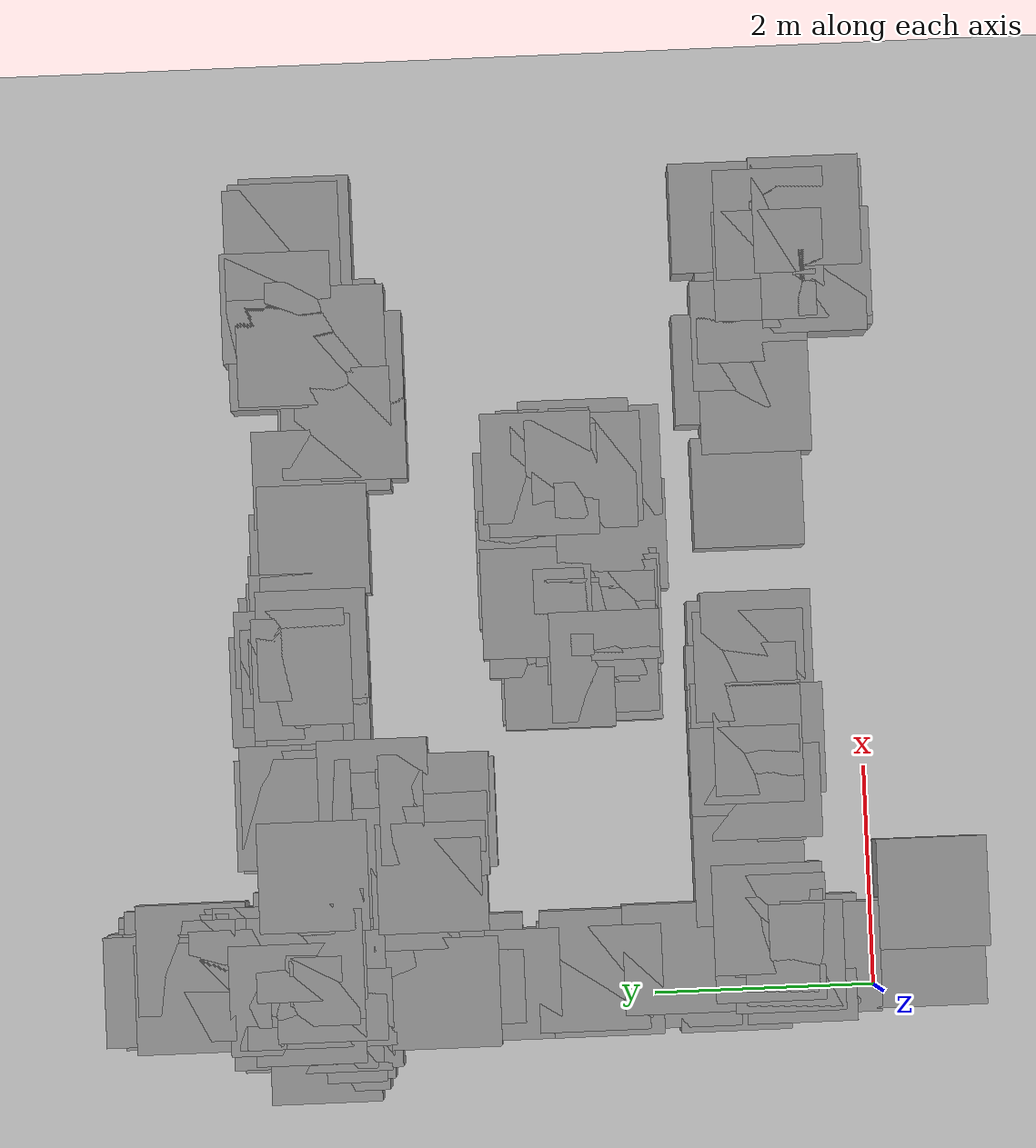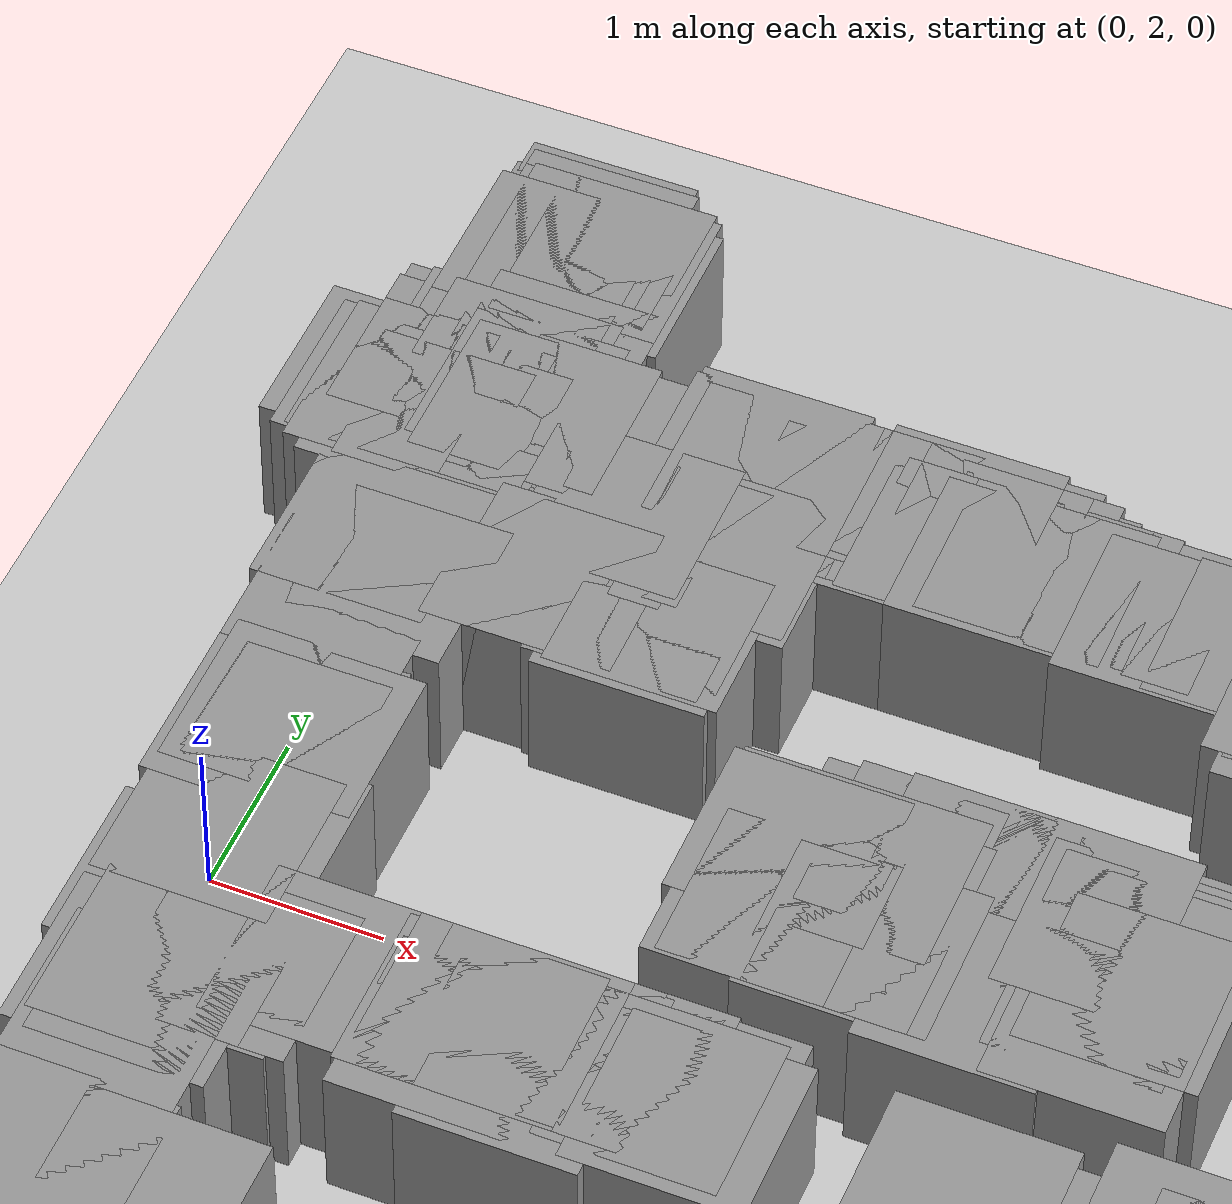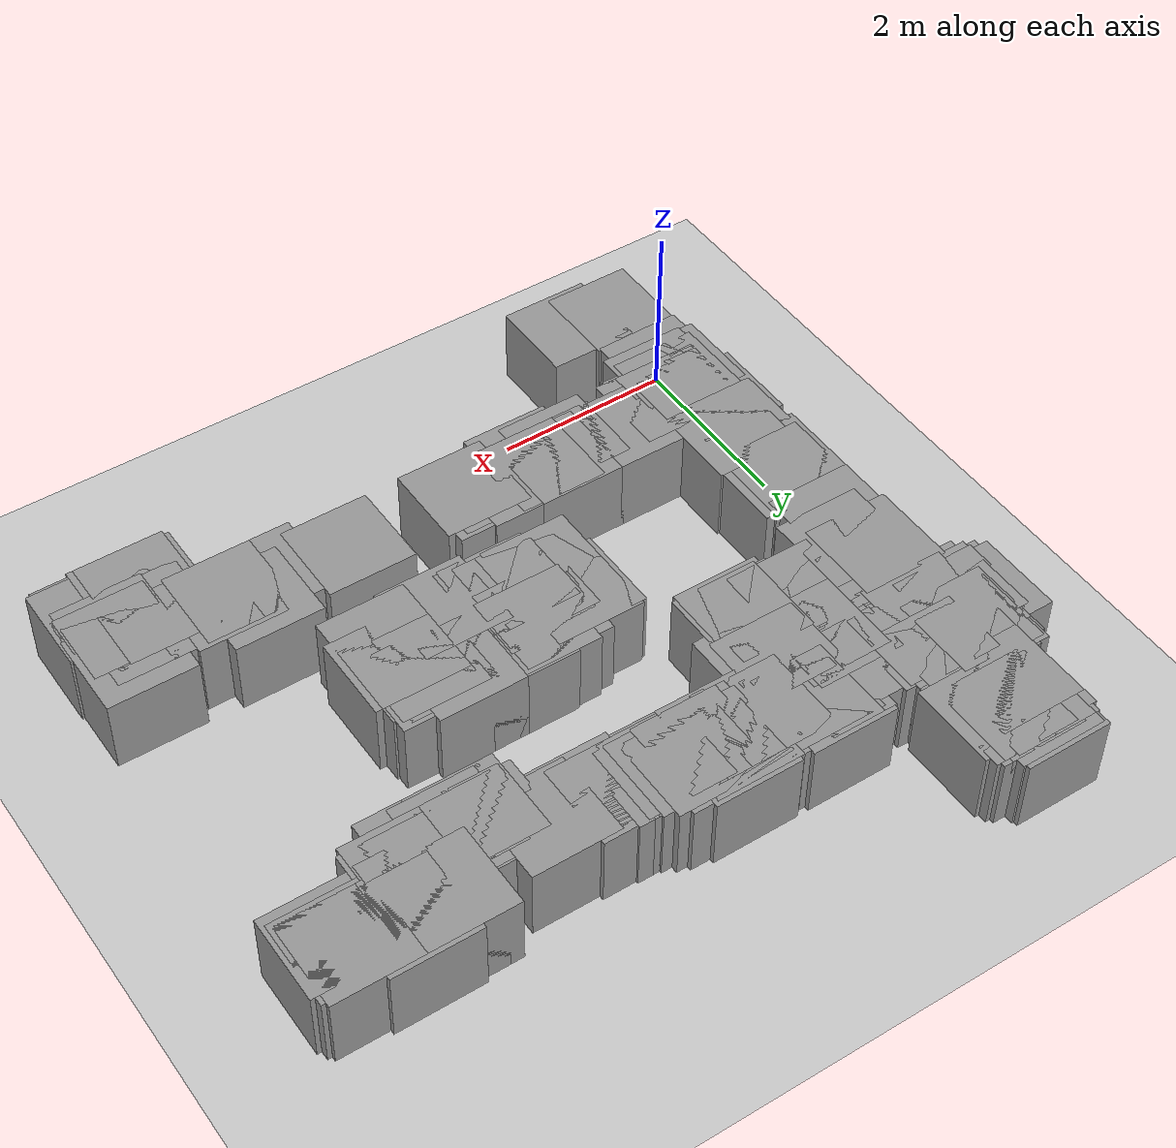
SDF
<sdf version="1.7">
 <world name="default">
  <model name="ground_plane">
   <static>1</static>
   <link name="link">
    <collision name="collision">
     <geometry><plane><normal>0 0 1</normal><size>100 100</size></plane></geometry>
     <surface>
      <contact><collide_bitmask>65535</collide_bitmask></contact>
      <friction><ode><mu>100</mu><mu2>50</mu2></ode></friction>
     </surface>
    </collision>
    <visual name="visual">
     <cast_shadows>0</cast_shadows>
     <geometry><plane><normal>0 0 1</normal><size>100 100</size></plane></geometry>
     <material>
      <script><uri>file://media/materials/scripts/gazebo.material</uri><name>Gazebo/Grey</name></script>
     </material>
    </visual>
   </link>
  </model>
  <include>
   <uri>model://unit_box</uri>
   <name>map_box_0</name>
   <pose>0.2325 6.4900 0.3500 0 0 0</pose>
   <scale>0.100 0.050 0.700</scale>
  </include>
  <include>
   <uri>model://unit_box</uri>
   <name>map_box_1</name>
   <pose>0.2575 6.4400 0.3500 0 0 0</pose>
   <scale>0.050 0.050 0.700</scale>
  </include>
  <include>
   <uri>model://unit_box</uri>
   <name>map_box_2</name>
   <pose>0.2075 6.3150 0.3500 0 0 0</pose>
   <scale>0.050 0.200 0.700</scale>
  </include>
  <include>
   <uri>model://unit_box</uri>
   <name>map_box_3</name>
   <pose>0.3075 6.3400 0.3500 0 0 0</pose>
   <scale>0.050 0.150 0.700</scale>
  </include>
  <include>
   <uri>model://unit_box</uri>
   <name>map_box_4</name>
   <pose>0.4075 6.3400 0.3500 0 0 0</pose>
   <scale>0.050 0.150 0.700</scale>
  </include>
  <include>
   <uri>model://unit_box</uri>
   <name>map_box_5</name>
   <pose>0.2575 6.3150 0.3500 0 0 0</pose>
   <scale>0.050 0.100 0.700</scale>
  </include>
  <include>
   <uri>model://unit_box</uri>
   <name>map_box_6</name>
   <pose>0.4575 6.2900 0.3500 0 0 0</pose>
   <scale>0.050 0.150 0.700</scale>
  </include>
  <include>
   <uri>model://unit_box</uri>
   <name>map_box_7</name>
   <pose>0.3575 6.2900 0.3500 0 0 0</pose>
   <scale>0.050 0.050 0.700</scale>
  </include>
  <include>
   <uri>model://unit_box</uri>
   <name>map_box_8</name>
   <pose>0.1575 6.2150 0.3500 0 0 0</pose>
   <scale>0.050 0.100 0.700</scale>
  </include>
  <include>
   <uri>model://unit_box</uri>
   <name>map_box_9</name>
   <pose>0.5075 6.1900 0.3500 0 0 0</pose>
   <scale>0.050 0.050 0.700</scale>
  </include>
  <include>
   <uri>model://unit_box</uri>
   <name>map_box_10</name>
   <pose>0.1575 6.0400 0.3500 0 0 0</pose>
   <scale>0.050 0.150 0.700</scale>
  </include>
  <include>
   <uri>model://unit_box</uri>
   <name>map_box_12</name>
   <pose>0.3575 5.9900 0.3500 0 0 0</pose>
   <scale>0.050 0.050 0.700</scale>
  </include>
  <include>
   <uri>model://unit_box</uri>
   <name>map_box_13</name>
   <pose>0.1825 5.8900 0.3500 0 0 0</pose>
   <scale>0.100 0.050 0.700</scale>
  </include>
  <include>
   <uri>model://unit_box</uri>
   <name>map_box_16</name>
   <pose>0.2075 4.9400 0.3500 0 0 0</pose>
   <scale>0.050 1.750 0.700</scale>
  </include>
  <include>
   <uri>model://unit_box</uri>
   <name>map_box_19</name>
   <pose>0.2575 5.7150 0.3500 0 0 0</pose>
   <scale>0.050 0.100 0.700</scale>
  </include>
  <include>
   <uri>model://unit_box</uri>
   <name>map_box_69</name>
   <pose>0.4575 5.4900 0.3500 0 0 0</pose>
   <scale>0.050 0.050 0.700</scale>
  </include>
  <include>
   <uri>model://unit_box</uri>
   <name>map_box_86</name>
   <pose>0.1075 5.3650 0.3500 0 0 0</pose>
   <scale>0.150 0.100 0.700</scale>
  </include>
  <include>
   <uri>model://unit_box</uri>
   <name>map_box_87</name>
   <pose>0.4575 5.3900 0.3500 0 0 0</pose>
   <scale>0.050 0.050 0.700</scale>
  </include>
  <include>
   <uri>model://unit_box</uri>
   <name>map_box_90</name>
   <pose>-0.0175 5.3400 0.3500 0 0 0</pose>
   <scale>0.100 0.050 0.700</scale>
  </include>
  <include>
   <uri>model://unit_box</uri>
   <name>map_box_91</name>
   <pose>0.2575 5.3400 0.3500 0 0 0</pose>
   <scale>0.050 0.050 0.700</scale>
  </include>
  <include>
   <uri>model://unit_box</uri>
   <name>map_box_93</name>
   <pose>0.0075 5.2900 0.3500 0 0 0</pose>
   <scale>0.050 0.050 0.700</scale>
  </include>
  <include>
   <uri>model://unit_box</uri>
   <name>map_box_94</name>
   <pose>0.1575 5.2150 0.3500 0 0 0</pose>
   <scale>0.050 0.200 0.700</scale>
  </include>
  <include>
   <uri>model://unit_box</uri>
   <name>map_box_95</name>
   <pose>6.9575 5.1400 0.3500 0 0 0</pose>
   <scale>0.050 0.350 0.700</scale>
  </include>
  <include>
   <uri>model://unit_box</uri>
   <name>map_box_97</name>
   <pose>-0.0425 5.2400 0.3500 0 0 0</pose>
   <scale>0.050 0.050 0.700</scale>
  </include>
  <include>
   <uri>model://unit_box</uri>
   <name>map_box_98</name>
   <pose>0.4575 5.1650 0.3500 0 0 0</pose>
   <scale>0.050 0.200 0.700</scale>
  </include>
  <include>
   <uri>model://unit_box</uri>
   <name>map_box_99</name>
   <pose>1.7825 5.2400 0.3500 0 0 0</pose>
   <scale>0.100 0.050 0.700</scale>
  </include>
  <include>
   <uri>model://unit_box</uri>
   <name>map_box_100</name>
   <pose>2.9075 5.2400 0.3500 0 0 0</pose>
   <scale>0.150 0.050 0.700</scale>
  </include>
  <include>
   <uri>model://unit_box</uri>
   <name>map_box_101</name>
   <pose>7.0075 5.0900 0.3500 0 0 0</pose>
   <scale>0.050 0.350 0.700</scale>
  </include>
  <include>
   <uri>model://unit_box</uri>
   <name>map_box_106</name>
   <pose>0.2575 4.2650 0.3500 0 0 0</pose>
   <scale>0.050 1.900 0.700</scale>
  </include>
  <include>
   <uri>model://unit_box</uri>
   <name>map_box_107</name>
   <pose>0.3575 5.1900 0.3500 0 0 0</pose>
   <scale>0.050 0.050 0.700</scale>
  </include>
  <include>
   <uri>model://unit_box</uri>
   <name>map_box_108</name>
   <pose>1.7575 5.1900 0.3500 0 0 0</pose>
   <scale>0.050 0.050 0.700</scale>
  </include>
  <include>
   <uri>model://unit_box</uri>
   <name>map_box_109</name>
   <pose>1.9075 5.1900 0.3500 0 0 0</pose>
   <scale>0.050 0.050 0.700</scale>
  </include>
  <include>
   <uri>model://unit_box</uri>
   <name>map_box_110</name>
   <pose>2.8575 5.1900 0.3500 0 0 0</pose>
   <scale>0.050 0.050 0.700</scale>
  </include>
  <include>
   <uri>model://unit_box</uri>
   <name>map_box_111</name>
   <pose>3.1325 5.1900 0.3500 0 0 0</pose>
   <scale>0.100 0.050 0.700</scale>
  </include>
  <include>
   <uri>model://unit_box</uri>
   <name>map_box_112</name>
   <pose>6.3825 5.1900 0.3500 0 0 0</pose>
   <scale>1.100 0.050 0.700</scale>
  </include>
  <include>
   <uri>model://unit_box</uri>
   <name>map_box_116</name>
   <pose>0.0075 5.1400 0.3500 0 0 0</pose>
   <scale>0.050 0.050 0.700</scale>
  </include>
  <include>
   <uri>model://unit_box</uri>
   <name>map_box_117</name>
   <pose>0.4075 5.1400 0.3500 0 0 0</pose>
   <scale>0.050 0.050 0.700</scale>
  </include>
  <include>
   <uri>model://unit_box</uri>
   <name>map_box_118</name>
   <pose>0.5825 5.1150 0.3500 0 0 0</pose>
   <scale>0.100 0.100 0.700</scale>
  </include>
  <include>
   <uri>model://unit_box</uri>
   <name>map_box_119</name>
   <pose>1.8575 5.1400 0.3500 0 0 0</pose>
   <scale>0.050 0.050 0.700</scale>
  </include>
  <include>
   <uri>model://unit_box</uri>
   <name>map_box_120</name>
   <pose>2.9075 5.1400 0.3500 0 0 0</pose>
   <scale>0.050 0.050 0.700</scale>
  </include>
  <include>
   <uri>model://unit_box</uri>
   <name>map_box_121</name>
   <pose>3.0825 5.1400 0.3500 0 0 0</pose>
   <scale>0.100 0.050 0.700</scale>
  </include>
  <include>
   <uri>model://unit_box</uri>
   <name>map_box_122</name>
   <pose>3.2575 5.1400 0.3500 0 0 0</pose>
   <scale>0.050 0.050 0.700</scale>
  </include>
  <include>
   <uri>model://unit_box</uri>
   <name>map_box_123</name>
   <pose>3.3825 5.0650 0.3500 0 0 0</pose>
   <scale>0.100 0.200 0.700</scale>
  </include>
  <include>
   <uri>model://unit_box</uri>
   <name>map_box_124</name>
   <pose>5.9575 5.1400 0.3500 0 0 0</pose>
   <scale>0.150 0.050 0.700</scale>
  </include>
  <include>
   <uri>model://unit_box</uri>
   <name>map_box_125</name>
   <pose>6.1075 5.1400 0.3500 0 0 0</pose>
   <scale>0.050 0.050 0.700</scale>
  </include>
  <include>
   <uri>model://unit_box</uri>
   <name>map_box_130</name>
   <pose>0.5075 5.0900 0.3500 0 0 0</pose>
   <scale>0.050 0.050 0.700</scale>
  </include>
  <include>
   <uri>model://unit_box</uri>
   <name>map_box_131</name>
   <pose>1.2075 5.0650 0.3500 0 0 0</pose>
   <scale>1.150 0.100 0.700</scale>
  </include>
  <include>
   <uri>model://unit_box</uri>
   <name>map_box_132</name>
   <pose>2.9575 5.0400 0.3500 0 0 0</pose>
   <scale>0.050 0.150 0.700</scale>
  </include>
  <include>
   <uri>model://unit_box</uri>
   <name>map_box_133</name>
   <pose>3.0575 5.0400 0.3500 0 0 0</pose>
   <scale>0.050 0.150 0.700</scale>
  </include>
  <include>
   <uri>model://unit_box</uri>
   <name>map_box_134</name>
   <pose>3.4575 5.0400 0.3500 0 0 0</pose>
   <scale>0.050 0.150 0.700</scale>
  </include>
  <include>
   <uri>model://unit_box</uri>
   <name>map_box_135</name>
   <pose>3.6325 5.0400 0.3500 0 0 0</pose>
   <scale>0.200 0.150 0.700</scale>
  </include>
  <include>
   <uri>model://unit_box</uri>
   <name>map_box_136</name>
   <pose>5.9825 5.0650 0.3500 0 0 0</pose>
   <scale>0.100 0.100 0.700</scale>
  </include>
  <include>
   <uri>model://unit_box</uri>
   <name>map_box_137</name>
   <pose>7.0575 4.9900 0.3500 0 0 0</pose>
   <scale>0.050 0.250 0.700</scale>
  </include>
  <include>
   <uri>model://unit_box</uri>
   <name>map_box_139</name>
   <pose>-0.3425 5.0150 0.3500 0 0 0</pose>
   <scale>0.250 0.100 0.700</scale>
  </include>
  <include>
   <uri>model://unit_box</uri>
   <name>map_box_140</name>
   <pose>-0.0425 5.0400 0.3500 0 0 0</pose>
   <scale>0.050 0.050 0.700</scale>
  </include>
  <include>
   <uri>model://unit_box</uri>
   <name>map_box_141</name>
   <pose>0.1575 5.0400 0.3500 0 0 0</pose>
   <scale>0.050 0.050 0.700</scale>
  </include>
  <include>
   <uri>model://unit_box</uri>
   <name>map_box_142</name>
   <pose>2.3575 5.0400 0.3500 0 0 0</pose>
   <scale>1.150 0.050 0.700</scale>
  </include>
  <include>
   <uri>model://unit_box</uri>
   <name>map_box_143</name>
   <pose>3.0075 5.0150 0.3500 0 0 0</pose>
   <scale>0.050 0.100 0.700</scale>
  </include>
  <include>
   <uri>model://unit_box</uri>
   <name>map_box_144</name>
   <pose>3.1825 5.0150 0.3500 0 0 0</pose>
   <scale>0.200 0.100 0.700</scale>
  </include>
  <include>
   <uri>model://unit_box</uri>
   <name>map_box_145</name>
   <pose>3.5075 5.0150 0.3500 0 0 0</pose>
   <scale>0.050 0.100 0.700</scale>
  </include>
  <include>
   <uri>model://unit_box</uri>
   <name>map_box_146</name>
   <pose>4.0075 5.0150 0.3500 0 0 0</pose>
   <scale>0.550 0.100 0.700</scale>
  </include>
  <include>
   <uri>model://unit_box</uri>
   <name>map_box_149</name>
   <pose>-0.1675 4.9650 0.3500 0 0 0</pose>
   <scale>0.100 0.100 0.700</scale>
  </include>
  <include>
   <uri>model://unit_box</uri>
   <name>map_box_150</name>
   <pose>0.0075 4.9900 0.3500 0 0 0</pose>
   <scale>0.050 0.050 0.700</scale>
  </include>
  <include>
   <uri>model://unit_box</uri>
   <name>map_box_151</name>
   <pose>2.7325 4.9900 0.3500 0 0 0</pose>
   <scale>0.400 0.050 0.700</scale>
  </include>
  <include>
   <uri>model://unit_box</uri>
   <name>map_box_152</name>
   <pose>3.3075 4.9900 0.3500 0 0 0</pose>
   <scale>0.050 0.050 0.700</scale>
  </include>
  <include>
   <uri>model://unit_box</uri>
   <name>map_box_153</name>
   <pose>4.7575 4.9650 0.3500 0 0 0</pose>
   <scale>0.950 0.100 0.700</scale>
  </include>
  <include>
   <uri>model://unit_box</uri>
   <name>map_box_154</name>
   <pose>6.0325 4.9650 0.3500 0 0 0</pose>
   <scale>0.100 0.100 0.700</scale>
  </include>
  <include>
   <uri>model://unit_box</uri>
   <name>map_box_156</name>
   <pose>-0.2425 4.9400 0.3500 0 0 0</pose>
   <scale>0.050 0.050 0.700</scale>
  </include>
  <include>
   <uri>model://unit_box</uri>
   <name>map_box_157</name>
   <pose>-0.0675 4.9150 0.3500 0 0 0</pose>
   <scale>0.100 0.100 0.700</scale>
  </include>
  <include>
   <uri>model://unit_box</uri>
   <name>map_box_158</name>
   <pose>0.1575 4.8650 0.3500 0 0 0</pose>
   <scale>0.050 0.200 0.700</scale>
  </include>
  <include>
   <uri>model://unit_box</uri>
   <name>map_box_159</name>
   <pose>4.2575 4.9400 0.3500 0 0 0</pose>
   <scale>0.050 0.050 0.700</scale>
  </include>
  <include>
   <uri>model://unit_box</uri>
   <name>map_box_162</name>
   <pose>-0.1425 4.8900 0.3500 0 0 0</pose>
   <scale>0.050 0.050 0.700</scale>
  </include>
  <include>
   <uri>model://unit_box</uri>
   <name>map_box_163</name>
   <pose>5.1825 4.7150 0.3500 0 0 0</pose>
   <scale>0.100 0.400 0.700</scale>
  </include>
  <include>
   <uri>model://unit_box</uri>
   <name>map_box_164</name>
   <pose>6.0575 4.7150 0.3500 0 0 0</pose>
   <scale>0.050 0.400 0.700</scale>
  </include>
  <include>
   <uri>model://unit_box</uri>
   <name>map_box_165</name>
   <pose>-0.0425 4.8150 0.3500 0 0 0</pose>
   <scale>0.050 0.100 0.700</scale>
  </include>
  <include>
   <uri>model://unit_box</uri>
   <name>map_box_167</name>
   <pose>6.1075 4.7900 0.3500 0 0 0</pose>
   <scale>0.050 0.050 0.700</scale>
  </include>
  <include>
   <uri>model://unit_box</uri>
   <name>map_box_169</name>
   <pose>5.3075 4.6900 0.3500 0 0 0</pose>
   <scale>0.150 0.050 0.700</scale>
  </include>
  <include>
   <uri>model://unit_box</uri>
   <name>map_box_170</name>
   <pose>1.2325 4.6400 0.3500 0 0 0</pose>
   <scale>0.200 0.050 0.700</scale>
  </include>
  <include>
   <uri>model://unit_box</uri>
   <name>map_box_171</name>
   <pose>5.4575 4.5900 0.3500 0 0 0</pose>
   <scale>0.250 0.150 0.700</scale>
  </include>
  <include>
   <uri>model://unit_box</uri>
   <name>map_box_174</name>
   <pose>1.2825 4.5900 0.3500 0 0 0</pose>
   <scale>0.200 0.050 0.700</scale>
  </include>
  <include>
   <uri>model://unit_box</uri>
   <name>map_box_175</name>
   <pose>1.8075 4.5900 0.3500 0 0 0</pose>
   <scale>0.050 0.050 0.700</scale>
  </include>
  <include>
   <uri>model://unit_box</uri>
   <name>map_box_176</name>
   <pose>5.2825 4.5650 0.3500 0 0 0</pose>
   <scale>0.100 0.100 0.700</scale>
  </include>
  <include>
   <uri>model://unit_box</uri>
   <name>map_box_177</name>
   <pose>5.8075 4.5650 0.3500 0 0 0</pose>
   <scale>0.450 0.100 0.700</scale>
  </include>
  <include>
   <uri>model://unit_box</uri>
   <name>map_box_180</name>
   <pose>0.1575 4.3400 0.3500 0 0 0</pose>
   <scale>0.050 0.450 0.700</scale>
  </include>
  <include>
   <uri>model://unit_box</uri>
   <name>map_box_181</name>
   <pose>1.3075 4.5400 0.3500 0 0 0</pose>
   <scale>0.050 0.050 0.700</scale>
  </include>
  <include>
   <uri>model://unit_box</uri>
   <name>map_box_182</name>
   <pose>1.9075 4.5400 0.3500 0 0 0</pose>
   <scale>0.150 0.050 0.700</scale>
  </include>
  <include>
   <uri>model://unit_box</uri>
   <name>map_box_186</name>
   <pose>0.1075 4.4900 0.3500 0 0 0</pose>
   <scale>0.050 0.050 0.700</scale>
  </include>
  <include>
   <uri>model://unit_box</uri>
   <name>map_box_187</name>
   <pose>1.9325 4.4900 0.3500 0 0 0</pose>
   <scale>0.100 0.050 0.700</scale>
  </include>
  <include>
   <uri>model://unit_box</uri>
   <name>map_box_194</name>
   <pose>0.1075 3.9150 0.3500 0 0 0</pose>
   <scale>0.050 0.900 0.700</scale>
  </include>
  <include>
   <uri>model://unit_box</uri>
   <name>map_box_200</name>
   <pose>1.1075 4.0150 0.3500 0 0 0</pose>
   <scale>0.050 0.200 0.700</scale>
  </include>
  <include>
   <uri>model://unit_box</uri>
   <name>map_box_201</name>
   <pose>0.3075 3.6900 0.3500 0 0 0</pose>
   <scale>0.050 0.750 0.700</scale>
  </include>
  <include>
   <uri>model://unit_box</uri>
   <name>map_box_202</name>
   <pose>1.0075 4.0400 0.3500 0 0 0</pose>
   <scale>0.150 0.050 0.700</scale>
  </include>
  <include>
   <uri>model://unit_box</uri>
   <name>map_box_203</name>
   <pose>1.0575 3.9900 0.3500 0 0 0</pose>
   <scale>0.050 0.050 0.700</scale>
  </include>
  <include>
   <uri>model://unit_box</uri>
   <name>map_box_204</name>
   <pose>1.1575 3.9900 0.3500 0 0 0</pose>
   <scale>0.050 0.050 0.700</scale>
  </include>
  <include>
   <uri>model://unit_box</uri>
   <name>map_box_205</name>
   <pose>1.6575 3.9650 0.3500 0 0 0</pose>
   <scale>0.150 0.100 0.700</scale>
  </include>
  <include>
   <uri>model://unit_box</uri>
   <name>map_box_206</name>
   <pose>1.7825 3.9400 0.3500 0 0 0</pose>
   <scale>0.100 0.050 0.700</scale>
  </include>
  <include>
   <uri>model://unit_box</uri>
   <name>map_box_207</name>
   <pose>1.7325 3.8900 0.3500 0 0 0</pose>
   <scale>0.100 0.050 0.700</scale>
  </include>
  <include>
   <uri>model://unit_box</uri>
   <name>map_box_209</name>
   <pose>0.1575 3.3650 0.3500 0 0 0</pose>
   <scale>0.150 0.100 0.700</scale>
  </include>
  <include>
   <uri>model://unit_box</uri>
   <name>map_box_214</name>
   <pose>3.8825 2.9650 0.3500 0 0 0</pose>
   <scale>0.100 0.100 0.700</scale>
  </include>
  <include>
   <uri>model://unit_box</uri>
   <name>map_box_215</name>
   <pose>4.4825 2.9650 0.3500 0 0 0</pose>
   <scale>1.000 0.100 0.700</scale>
  </include>
  <include>
   <uri>model://unit_box</uri>
   <name>map_box_217</name>
   <pose>3.6075 2.9400 0.3500 0 0 0</pose>
   <scale>0.450 0.050 0.700</scale>
  </include>
  <include>
   <uri>model://unit_box</uri>
   <name>map_box_218</name>
   <pose>3.9575 2.9400 0.3500 0 0 0</pose>
   <scale>0.050 0.050 0.700</scale>
  </include>
  <include>
   <uri>model://unit_box</uri>
   <name>map_box_219</name>
   <pose>3.4325 2.8900 0.3500 0 0 0</pose>
   <scale>0.100 0.050 0.700</scale>
  </include>
  <include>
   <uri>model://unit_box</uri>
   <name>map_box_220</name>
   <pose>4.8325 2.8900 0.3500 0 0 0</pose>
   <scale>0.300 0.050 0.700</scale>
  </include>
  <include>
   <uri>model://unit_box</uri>
   <name>map_box_221</name>
   <pose>3.0075 2.7900 0.3500 0 0 0</pose>
   <scale>0.050 0.150 0.700</scale>
  </include>
  <include>
   <uri>model://unit_box</uri>
   <name>map_box_222</name>
   <pose>3.3825 2.7900 0.3500 0 0 0</pose>
   <scale>0.100 0.150 0.700</scale>
  </include>
  <include>
   <uri>model://unit_box</uri>
   <name>map_box_223</name>
   <pose>4.7075 2.8400 0.3500 0 0 0</pose>
   <scale>0.150 0.050 0.700</scale>
  </include>
  <include>
   <uri>model://unit_box</uri>
   <name>map_box_224</name>
   <pose>4.9325 2.5400 0.3500 0 0 0</pose>
   <scale>0.100 0.650 0.700</scale>
  </include>
  <include>
   <uri>model://unit_box</uri>
   <name>map_box_225</name>
   <pose>2.9575 2.7650 0.3500 0 0 0</pose>
   <scale>0.050 0.100 0.700</scale>
  </include>
  <include>
   <uri>model://unit_box</uri>
   <name>map_box_226</name>
   <pose>3.0575 2.7650 0.3500 0 0 0</pose>
   <scale>0.050 0.100 0.700</scale>
  </include>
  <include>
   <uri>model://unit_box</uri>
   <name>map_box_227</name>
   <pose>4.7825 2.7900 0.3500 0 0 0</pose>
   <scale>0.100 0.050 0.700</scale>
  </include>
  <include>
   <uri>model://unit_box</uri>
   <name>map_box_228</name>
   <pose>4.8575 2.7400 0.3500 0 0 0</pose>
   <scale>0.050 0.050 0.700</scale>
  </include>
  <include>
   <uri>model://unit_box</uri>
   <name>map_box_229</name>
   <pose>3.4075 2.4650 0.3500 0 0 0</pose>
   <scale>0.050 0.500 0.700</scale>
  </include>
  <include>
   <uri>model://unit_box</uri>
   <name>map_box_230</name>
   <pose>4.8075 2.6150 0.3500 0 0 0</pose>
   <scale>0.050 0.200 0.700</scale>
  </include>
  <include>
   <uri>model://unit_box</uri>
   <name>map_box_231</name>
   <pose>3.4575 2.6400 0.3500 0 0 0</pose>
   <scale>0.050 0.050 0.700</scale>
  </include>
  <include>
   <uri>model://unit_box</uri>
   <name>map_box_232</name>
   <pose>4.8575 2.5400 0.3500 0 0 0</pose>
   <scale>0.050 0.250 0.700</scale>
  </include>
  <include>
   <uri>model://unit_box</uri>
   <name>map_box_233</name>
   <pose>0.2075 2.5650 0.3500 0 0 0</pose>
   <scale>0.050 0.100 0.700</scale>
  </include>
  <include>
   <uri>model://unit_box</uri>
   <name>map_box_235</name>
   <pose>0.1575 2.4400 0.3500 0 0 0</pose>
   <scale>0.050 0.250 0.700</scale>
  </include>
  <include>
   <uri>model://unit_box</uri>
   <name>map_box_236</name>
   <pose>0.3075 2.5400 0.3500 0 0 0</pose>
   <scale>0.150 0.050 0.700</scale>
  </include>
  <include>
   <uri>model://unit_box</uri>
   <name>map_box_237</name>
   <pose>3.3575 2.5400 0.3500 0 0 0</pose>
   <scale>0.050 0.050 0.700</scale>
  </include>
  <include>
   <uri>model://unit_box</uri>
   <name>map_box_238</name>
   <pose>4.7575 2.4900 0.3500 0 0 0</pose>
   <scale>0.050 0.150 0.700</scale>
  </include>
  <include>
   <uri>model://unit_box</uri>
   <name>map_box_240</name>
   <pose>0.3325 1.7900 0.3500 0 0 0</pose>
   <scale>0.100 1.450 0.700</scale>
  </include>
  <include>
   <uri>model://unit_box</uri>
   <name>map_box_245</name>
   <pose>0.2075 1.7400 0.3500 0 0 0</pose>
   <scale>0.050 1.450 0.700</scale>
  </include>
  <include>
   <uri>model://unit_box</uri>
   <name>map_box_246</name>
   <pose>3.3575 2.3650 0.3500 0 0 0</pose>
   <scale>0.050 0.200 0.700</scale>
  </include>
  <include>
   <uri>model://unit_box</uri>
   <name>map_box_247</name>
   <pose>3.4575 2.3400 0.3500 0 0 0</pose>
   <scale>0.050 0.250 0.700</scale>
  </include>
  <include>
   <uri>model://unit_box</uri>
   <name>map_box_248</name>
   <pose>4.8075 2.4400 0.3500 0 0 0</pose>
   <scale>0.050 0.050 0.700</scale>
  </include>
  <include>
   <uri>model://unit_box</uri>
   <name>map_box_249</name>
   <pose>3.0825 2.3650 0.3500 0 0 0</pose>
   <scale>0.100 0.100 0.700</scale>
  </include>
  <include>
   <uri>model://unit_box</uri>
   <name>map_box_250</name>
   <pose>3.3075 2.3650 0.3500 0 0 0</pose>
   <scale>0.050 0.100 0.700</scale>
  </include>
  <include>
   <uri>model://unit_box</uri>
   <name>map_box_251</name>
   <pose>3.5075 2.3150 0.3500 0 0 0</pose>
   <scale>0.050 0.200 0.700</scale>
  </include>
  <include>
   <uri>model://unit_box</uri>
   <name>map_box_252</name>
   <pose>3.0075 2.3400 0.3500 0 0 0</pose>
   <scale>0.050 0.050 0.700</scale>
  </include>
  <include>
   <uri>model://unit_box</uri>
   <name>map_box_253</name>
   <pose>3.5575 2.3400 0.3500 0 0 0</pose>
   <scale>0.050 0.050 0.700</scale>
  </include>
  <include>
   <uri>model://unit_box</uri>
   <name>map_box_255</name>
   <pose>4.8575 2.2650 0.3500 0 0 0</pose>
   <scale>0.050 0.100 0.700</scale>
  </include>
  <include>
   <uri>model://unit_box</uri>
   <name>map_box_256</name>
   <pose>4.1825 2.2400 0.3500 0 0 0</pose>
   <scale>1.300 0.050 0.700</scale>
  </include>
  <include>
   <uri>model://unit_box</uri>
   <name>map_box_290</name>
   <pose>0.1575 1.2900 0.3500 0 0 0</pose>
   <scale>0.050 0.050 0.700</scale>
  </include>
  <include>
   <uri>model://unit_box</uri>
   <name>map_box_292</name>
   <pose>1.1075 1.1150 0.3500 0 0 0</pose>
   <scale>1.450 0.100 0.700</scale>
  </include>
  <include>
   <uri>model://unit_box</uri>
   <name>map_box_293</name>
   <pose>1.9075 1.1150 0.3500 0 0 0</pose>
   <scale>0.050 0.100 0.700</scale>
  </include>
  <include>
   <uri>model://unit_box</uri>
   <name>map_box_294</name>
   <pose>2.0825 1.1150 0.3500 0 0 0</pose>
   <scale>0.200 0.100 0.700</scale>
  </include>
  <include>
   <uri>model://unit_box</uri>
   <name>map_box_295</name>
   <pose>2.2575 1.1150 0.3500 0 0 0</pose>
   <scale>0.050 0.100 0.700</scale>
  </include>
  <include>
   <uri>model://unit_box</uri>
   <name>map_box_296</name>
   <pose>2.6575 1.1150 0.3500 0 0 0</pose>
   <scale>0.650 0.100 0.700</scale>
  </include>
  <include>
   <uri>model://unit_box</uri>
   <name>map_box_297</name>
   <pose>5.6575 1.1150 0.3500 0 0 0</pose>
   <scale>2.350 0.100 0.700</scale>
  </include>
  <include>
   <uri>model://unit_box</uri>
   <name>map_box_298</name>
   <pose>1.8575 1.0900 0.3500 0 0 0</pose>
   <scale>0.050 0.050 0.700</scale>
  </include>
  <include>
   <uri>model://unit_box</uri>
   <name>map_box_299</name>
   <pose>1.9575 1.0900 0.3500 0 0 0</pose>
   <scale>0.050 0.050 0.700</scale>
  </include>
  <include>
   <uri>model://unit_box</uri>
   <name>map_box_300</name>
   <pose>2.2075 1.0900 0.3500 0 0 0</pose>
   <scale>0.050 0.050 0.700</scale>
  </include>
  <include>
   <uri>model://unit_box</uri>
   <name>map_box_301</name>
   <pose>2.3075 1.0900 0.3500 0 0 0</pose>
   <scale>0.050 0.050 0.700</scale>
  </include>
  <include>
   <uri>model://unit_box</uri>
   <name>map_box_302</name>
   <pose>3.0575 1.0900 0.3500 0 0 0</pose>
   <scale>0.150 0.050 0.700</scale>
  </include>
  <include>
   <uri>model://unit_box</uri>
   <name>map_box_303</name>
   <pose>7.0325 1.0900 0.3500 0 0 0</pose>
   <scale>0.400 0.050 0.700</scale>
  </include>
  <include>
   <uri>model://unit_box</uri>
   <name>map_box_304</name>
   <pose>2.9575 1.0400 0.3500 0 0 0</pose>
   <scale>0.050 0.050 0.700</scale>
  </include>
  <include>
   <uri>model://unit_box</uri>
   <name>map_box_305</name>
   <pose>3.1325 0.9650 0.3500 0 0 0</pose>
   <scale>0.100 0.200 0.700</scale>
  </include>
  <include>
   <uri>model://unit_box</uri>
   <name>map_box_306</name>
   <pose>4.5325 0.9900 0.3500 0 0 0</pose>
   <scale>0.100 0.150 0.700</scale>
  </include>
  <include>
   <uri>model://unit_box</uri>
   <name>map_box_308</name>
   <pose>0.4075 0.9650 0.3500 0 0 0</pose>
   <scale>0.150 0.100 0.700</scale>
  </include>
  <include>
   <uri>model://unit_box</uri>
   <name>map_box_309</name>
   <pose>0.6575 0.9650 0.3500 0 0 0</pose>
   <scale>0.050 0.100 0.700</scale>
  </include>
  <include>
   <uri>model://unit_box</uri>
   <name>map_box_310</name>
   <pose>0.2075 0.6900 0.3500 0 0 0</pose>
   <scale>0.050 0.550 0.700</scale>
  </include>
  <include>
   <uri>model://unit_box</uri>
   <name>map_box_311</name>
   <pose>0.3075 0.7900 0.3500 0 0 0</pose>
   <scale>0.050 0.350 0.700</scale>
  </include>
  <include>
   <uri>model://unit_box</uri>
   <name>map_box_312</name>
   <pose>0.5575 0.9400 0.3500 0 0 0</pose>
   <scale>0.150 0.050 0.700</scale>
  </include>
  <include>
   <uri>model://unit_box</uri>
   <name>map_box_313</name>
   <pose>1.8825 0.9400 0.3500 0 0 0</pose>
   <scale>2.400 0.050 0.700</scale>
  </include>
  <include>
   <uri>model://unit_box</uri>
   <name>map_box_314</name>
   <pose>5.9575 0.9400 0.3500 0 0 0</pose>
   <scale>2.750 0.050 0.700</scale>
  </include>
  <include>
   <uri>model://unit_box</uri>
   <name>map_box_315</name>
   <pose>0.3575 0.6650 0.3500 0 0 0</pose>
   <scale>0.050 0.500 0.700</scale>
  </include>
  <include>
   <uri>model://unit_box</uri>
   <name>map_box_316</name>
   <pose>2.2825 0.8900 0.3500 0 0 0</pose>
   <scale>1.600 0.050 0.700</scale>
  </include>
  <include>
   <uri>model://unit_box</uri>
   <name>map_box_317</name>
   <pose>5.3825 0.8900 0.3500 0 0 0</pose>
   <scale>0.100 0.050 0.700</scale>
  </include>
  <include>
   <uri>model://unit_box</uri>
   <name>map_box_318</name>
   <pose>5.8325 0.8900 0.3500 0 0 0</pose>
   <scale>0.600 0.050 0.700</scale>
  </include>
  <include>
   <uri>model://unit_box</uri>
   <name>map_box_319</name>
   <pose>6.2075 0.8900 0.3500 0 0 0</pose>
   <scale>0.050 0.050 0.700</scale>
  </include>
  <include>
   <uri>model://unit_box</uri>
   <name>map_box_320</name>
   <pose>6.8075 0.8900 0.3500 0 0 0</pose>
   <scale>1.050 0.050 0.700</scale>
  </include>
  <include>
   <uri>model://unit_box</uri>
   <name>map_box_321</name>
   <pose>6.9825 0.7900 0.3500 0 0 0</pose>
   <scale>0.100 0.150 0.700</scale>
  </include>
  <include>
   <uri>model://unit_box</uri>
   <name>map_box_325</name>
   <pose>6.6075 0.7900 0.3500 0 0 0</pose>
   <scale>0.150 0.050 0.700</scale>
  </include>
  <include>
   <uri>model://unit_box</uri>
   <name>map_box_326</name>
   <pose>6.5825 0.7150 0.3500 0 0 0</pose>
   <scale>0.100 0.100 0.700</scale>
  </include>
  <include>
   <uri>model://unit_box</uri>
   <name>map_box_328</name>
   <pose>6.9575 0.6900 0.3500 0 0 0</pose>
   <scale>0.050 0.050 0.700</scale>
  </include>
  <include>
   <uri>model://unit_box</uri>
   <name>map_box_330</name>
   <pose>0.2825 0.4650 0.3500 0 0 0</pose>
   <scale>0.100 0.100 0.700</scale>
  </include>
  <include>
   <uri>model://unit_box</uri>
   <name>map_box_331</name>
   <pose>7.0575 0.3650 0.3500 0 0 0</pose>
   <scale>0.050 0.200 0.700</scale>
  </include>
  <include>
   <uri>model://unit_box</uri>
   <name>map_box_333</name>
   <pose>7.0075 0.3400 0.3500 0 0 0</pose>
   <scale>0.050 0.150 0.700</scale>
  </include>
  <include>
   <uri>model://unit_box</uri>
   <name>map_box_335</name>
   <pose>6.4575 0.3400 0.3500 0 0 0</pose>
   <scale>0.050 0.050 0.700</scale>
  </include>
  <include>
   <uri>model://unit_box</uri>
   <name>map_box_336</name>
   <pose>6.5825 0.2900 0.3500 0 0 0</pose>
   <scale>0.100 0.150 0.700</scale>
  </include>
  <include>
   <uri>model://unit_box</uri>
   <name>map_box_338</name>
   <pose>6.5075 0.2900 0.3500 0 0 0</pose>
   <scale>0.050 0.050 0.700</scale>
  </include>
  <include>
   <uri>model://unit_box</uri>
   <name>map_box_347</name>
   <pose>0.3075 -0.4850 0.3500 0 0 0</pose>
   <scale>0.150 0.100 0.700</scale>
  </include>
  <include>
   <uri>model://unit_box</uri>
   <name>map_box_349</name>
   <pose>0.8325 -0.5350 0.3500 0 0 0</pose>
   <scale>0.900 0.100 0.700</scale>
  </include>
 </world>
</sdf>
